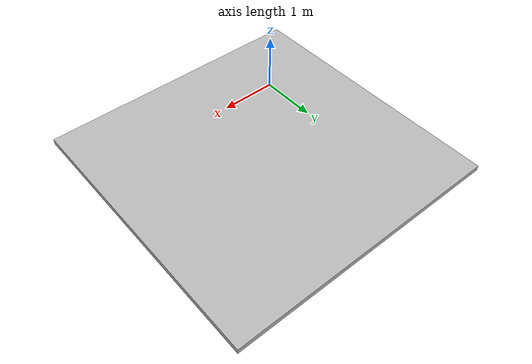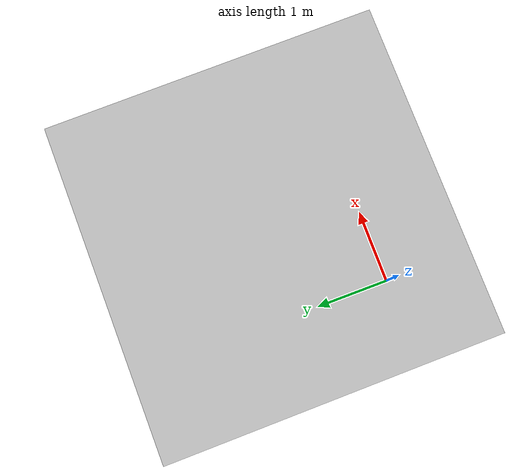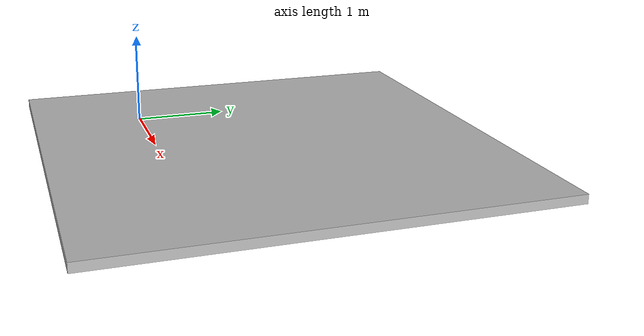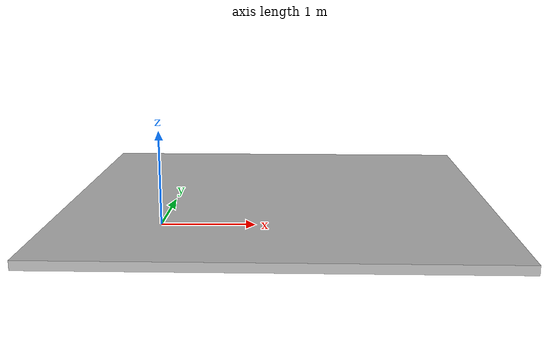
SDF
<?xml version="1.0" ?>
<sdf version="1.4">
  <world name="grid3">
    <include>
      <uri>model://planeStage2</uri>
      <name>stage2</name>
      <pose>1.2192 1.2192 -0.045 0 0 0</pose>
    </include>
    <include>
      <uri>model://sun</uri>
    </include>
    <gui fullscreen='0'>
      <camera name='user_camera'>
        <pose>1.08341 1.1584 2.71025 -1e-06 1.5538 1.5682</pose>
        <view_controller>orbit</view_controller>
        <projection_type>perspective</projection_type>
      </camera>
    </gui>
  </world>
</sdf>

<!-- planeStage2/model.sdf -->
<sdf version="1.6">
	<model name="planeStage2">
		<link name="ridges">
			<self_collide>false</self_collide>
			<pose frame="">0 0 0 0 0 -1.57</pose>
			<inertial>
				<pose frame="">0.0 0.0 0.0 0 0 0</pose>
				<mass>10</mass>
				<inertia>
					<ixx>0.83</ixx>
					<ixy>-0.0</ixy>
					<ixz>-0.0</ixz>
					<iyy>0.83</iyy>
					<iyz>-0.0</iyz>
					<izz>0.83</izz>
				</inertia>
			</inertial>
			<collision name="stage">
				<geometry>
					<box>
						<size>4.8768 4.8768 0.1</size>
					</box>
				</geometry>
			      <surface>
        <friction>
          <ode>
            <mu>1</mu>
            <mu2>1</mu2>
          </ode>
        </friction>
      </surface>
			</collision>

			<visual name="stage">
				<geometry>
					<box>
						<size>4.8768 4.8768  0.1</size>
					</box>
				</geometry>
				<material>
					<script>
						<uri>model://planeStage2/materials/scripts/</uri>
						<uri>model://planeStage2/materials/textures/</uri>
						<name>planeStage2/Image</name>
					</script>
				</material>
			</visual>
		</link>
		<static>true</static>
	</model>
</sdf>
